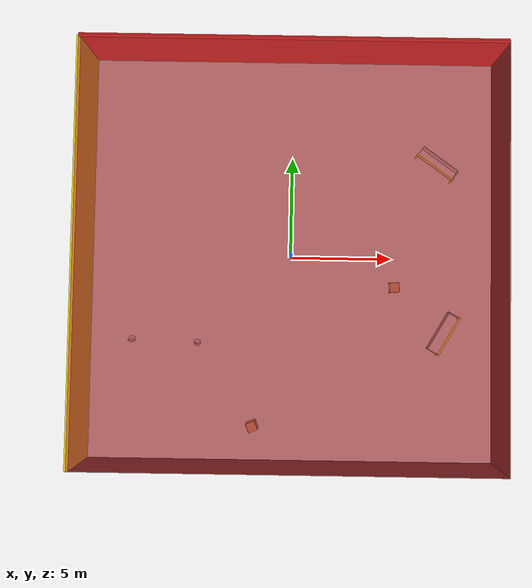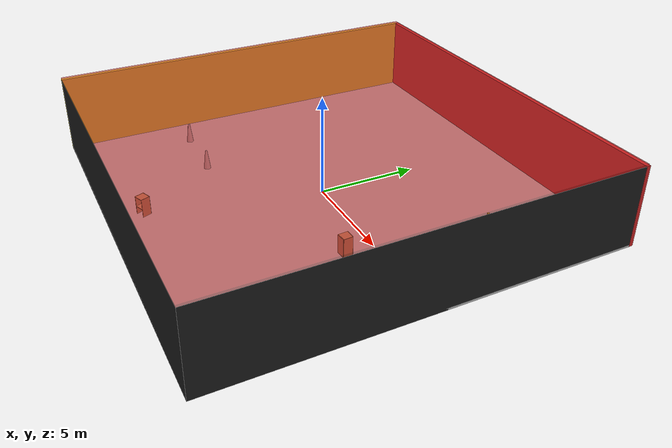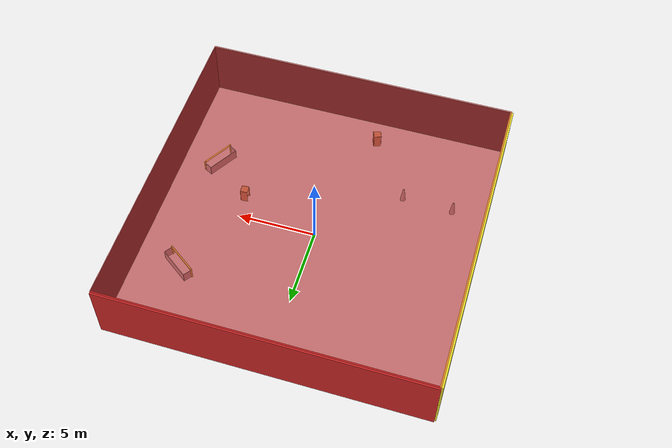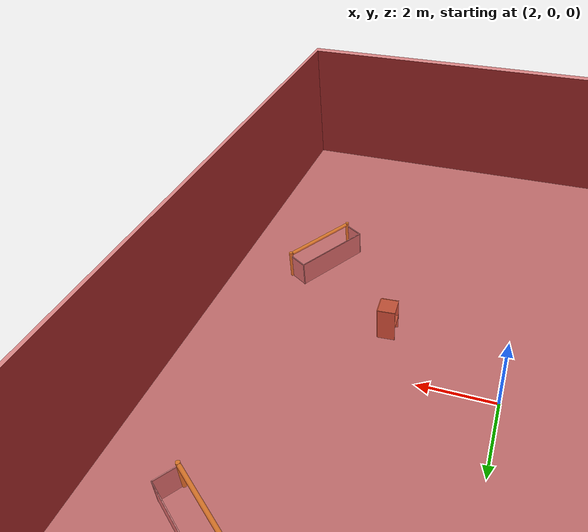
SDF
<sdf version="1.4">
 <world name="default">
  <physics type="ode">
   <max_step_size>0.001</max_step_size>
   <real_time_factor>1</real_time_factor>
   <real_time_update_rate>1000</real_time_update_rate>
   <gravity>0 0 -9.8</gravity>
  </physics>
  <scene><ambient>0.4 0.4 0.4 1</ambient><background>0.7 0.7 0.7 1</background><shadows>1</shadows></scene>
  <model name="Surrounding">
   <static>1</static>
   <link name="Ceiling">
    <collision name="Ceiling_Collision"><geometry><box><size>20 20 0.1</size></box></geometry></collision>
    <visual name="Ceiling_Visual">
     <geometry><box><size>20 20 0.1</size></box></geometry>
     <material>
      <script><uri>file://media/materials/scripts/gazebo.material</uri><name>Gazebo/RedTransparent</name></script>
     </material>
    </visual>
    <pose>0 0 4.05 0 0 0</pose>
   </link>
   <link name="Wall_South">
    <collision name="Wall_South_Collision">
     <geometry><box><size>20 0 4</size></box></geometry>
     <pose>0 0 2 0 -0 0</pose>
    </collision>
    <visual name="Wall_South_Visual">
     <pose>0 0 2 0 -0 0</pose>
     <geometry><box><size>20 0 4</size></box></geometry>
     <material>
      <script><uri>file://media/materials/scripts/gazebo.material</uri><name>Gazebo/Black</name></script>
     </material>
    </visual>
    <velocity_decay><linear>0</linear><angular>0</angular></velocity_decay>
    <pose>0 -10 0 0 -0 0</pose>
   </link>
   <link name="Wall_East">
    <collision name="Wall_21_Collision">
     <geometry><box><size>20 0 4</size></box></geometry>
     <pose>0 0 2 0 -0 0</pose>
    </collision>
    <visual name="Wall_21_Visual">
     <pose>0 0 2 0 -0 0</pose>
     <geometry><box><size>20 0 4</size></box></geometry>
     <material>
      <script><uri>file://media/materials/scripts/gazebo.material</uri><name>Gazebo/FlatBlack</name></script>
     </material>
    </visual>
    <velocity_decay><linear>0</linear><angular>0</angular></velocity_decay>
    <pose>10 0 0 0 -0 1.5708</pose>
   </link>
   <link name="Wall_North">
    <collision name="Wall_22_Collision">
     <geometry><box><size>20 0.2 4</size></box></geometry>
     <pose>0 0 2 0 -0 0</pose>
    </collision>
    <visual name="Wall_22_Visual">
     <pose>0 0 2 0 -0 0</pose>
     <geometry><box><size>20 0.2 4</size></box></geometry>
     <material>
      <script><uri>file://media/materials/scripts/gazebo.material</uri><name>Gazebo/Red</name></script>
     </material>
    </visual>
    <velocity_decay><linear>0</linear><angular>0</angular></velocity_decay>
    <pose>0 10 0 0 -0 0</pose>
   </link>
   <link name="Wall_West">
    <collision name="Wall_23_Collision">
     <geometry><box><size>20 0.2 4</size></box></geometry>
     <pose>0 0 2 0 -0 0</pose>
    </collision>
    <visual name="Wall_23_Visual">
     <pose>0 0 2 0 -0 0</pose>
     <geometry><box><size>20 0.2 4</size></box></geometry>
     <material>
      <script><uri>file://media/materials/scripts/gazebo.material</uri><name>Gazebo/Yellow</name></script>
     </material>
    </visual>
    <velocity_decay><linear>0</linear><angular>0</angular></velocity_decay>
    <pose>-10 0 0 0 0 -1.5708</pose>
   </link>
   <link name="Ground_link">
    <collision name="collision">
     <pose>0 0 .05 0 -0 0</pose>
     <geometry><box><size>20 20 0.1</size></box></geometry>
    </collision>
    <visual name="visual">
     <pose>0 0 .05 0 -0 0</pose>
     <geometry><box><size>20 20 0.1</size></box></geometry>
     <material>
      <script><uri>file://media/materials/scripts/gazebo.material</uri><name>Gazebo/Pioneer2Body</name></script>
     </material>
    </visual>
   </link>
   <static>1</static>
  </model>
  <spherical_coordinates>
   <surface_model>EARTH_WGS84</surface_model>
   <latitude_deg>0</latitude_deg>
   <longitude_deg>0</longitude_deg>
   <elevation>0</elevation>
   <heading_deg>0</heading_deg>
  </spherical_coordinates>
  <light name="lightball_0" type="diffuse">
   <diffuse>0.8 0.8 0.8 1</diffuse>
   <specular>0.2 0.2 0.2 1</specular>
   <attenuation>
    <range>100</range>
    <constant>0.7</constant>
    <linear>0.01</linear>
    <quadratic>0.001</quadratic>
   </attenuation>
   <direction>-0.5 0.1 -0.9</direction>
   <pose>-0.956411055765 -8.58904278023 1.66114196512 0 0 0</pose>
  </light>
  <light name="lightball_1" type="diffuse">
   <diffuse>0.8 0.8 0.8 1</diffuse>
   <specular>0.2 0.2 0.2 1</specular>
   <attenuation>
    <range>100</range>
    <constant>0.7</constant>
    <linear>0.01</linear>
    <quadratic>0.001</quadratic>
   </attenuation>
   <direction>-0.5 0.1 -0.9</direction>
   <pose>4.79991096124 6.06655685573 2.83385839533 0 0 0</pose>
  </light>
  <light name="lightball_2" type="diffuse">
   <diffuse>0.8 0.8 0.8 1</diffuse>
   <specular>0.2 0.2 0.2 1</specular>
   <attenuation>
    <range>100</range>
    <constant>0.7</constant>
    <linear>0.01</linear>
    <quadratic>0.001</quadratic>
   </attenuation>
   <direction>-0.5 0.1 -0.9</direction>
   <pose>-8.60591560525 9.07290817961 3.72696783671 0 0 0</pose>
  </light>
  <light name="lightball_3" type="diffuse">
   <diffuse>0.8 0.8 0.8 1</diffuse>
   <specular>0.2 0.2 0.2 1</specular>
   <attenuation>
    <range>100</range>
    <constant>0.7</constant>
    <linear>0.01</linear>
    <quadratic>0.001</quadratic>
   </attenuation>
   <direction>-0.5 0.1 -0.9</direction>
   <pose>4.97391011787 8.56607543225 2.74501027438 0 0 0</pose>
  </light>
  <light name="lightball_4" type="diffuse">
   <diffuse>0.8 0.8 0.8 1</diffuse>
   <specular>0.2 0.2 0.2 1</specular>
   <attenuation>
    <range>100</range>
    <constant>0.7</constant>
    <linear>0.01</linear>
    <quadratic>0.001</quadratic>
   </attenuation>
   <direction>-0.5 0.1 -0.9</direction>
   <pose>4.36249288396 5.40283032526 2.38023356295 0 0 0</pose>
  </light>
  <include>
   <uri>model://construction_cone</uri>
   <pose>-7.8436144488 -4.14811323371 0 0 0 0.625591088537</pose>
  </include>
  <include>
   <uri>model://construction_cone</uri>
   <pose>-4.60365466699 -4.27493904047 0 0 0 1.08432056073</pose>
  </include>
  <include><uri>model://cabinet</uri><pose>-1.79831087737 -8.2941544669 0 0 0 1.94499682255</pose></include>
  <include><uri>model://cabinet</uri><pose>5.07191059701 -1.42027846592 0 0 0 0.0541949873335</pose></include>
  <include>
   <uri>model://robocup_3Dsim_goal</uri>
   <pose>7.78083794093 -3.77310954548 0 0 0 2.60942570196</pose>
  </include>
  <include>
   <uri>model://robocup_3Dsim_goal</uri>
   <pose>7.05248927372 4.5384329076 0 0 0 0.948585219397</pose>
  </include>
 </world>
</sdf>

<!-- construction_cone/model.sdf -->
<sdf version="1.5">
  <model name="Construction Cone">
    <link name="link">
      <collision name="collision">
        <geometry>
          <mesh>
            <scale>10 10 10</scale>
            <uri>file://isr-testbed/construction_cone/meshes/construction_cone.dae</uri>
          </mesh>
        </geometry>
      </collision>
      <visual name="visual">
        <geometry>
          <mesh>
            <scale>10 10 10</scale>
            <uri>file://isr-testbed/construction_cone/meshes/construction_cone.dae</uri>
          </mesh>
        </geometry>
      </visual>
    </link>
  </model>
</sdf>

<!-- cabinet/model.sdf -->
<sdf version="1.5">
  <model name="cabinet">
    <static>true</static>
    <link name="cabinet_bottom_plate">
      <inertial>
        <pose>0 0 -1 0 0 0</pose>
        <inertia>
          <ixx>2.050000</ixx>
          <ixy>0</ixy>
          <ixz>0</ixz>
          <iyy>2.050000</iyy>
          <iyz>0</iyz>
          <izz>2.050000</izz>
        </inertia>
        <mass>25.000000</mass>
      </inertial>
      <collision name="cabinet_bottom_plate_geom">
        <pose>0 0 0.010000 0 0 0</pose>
        <geometry>
          <box>
            <size>0.450000 0.450000 0.020000</size>
          </box>
        </geometry>
      </collision>
      <visual name="cabinet_bottom_plate_geom_visual">
        <pose>0 0 0.010000 0 0 0</pose>
        <geometry>
          <box>
            <size>0.450000 0.450000 0.020000</size>
          </box>
        </geometry>
        <material>
          <script>
            <uri>model://media/materials/scripts/gazebo.material</uri>
            <name>Gazebo/Wood</name>
          </script>
        </material>
      </visual>
      <collision name="cabinet_bottom_plate_geom_cabinet_back_plate">
        <pose>0.235000 0 0.510000 0 0 0</pose>
        <geometry>
          <box>
            <size>0.020000 0.450000 1.020000</size>
          </box>
        </geometry>
      </collision>
      <visual name="cabinet_bottom_plate_geom_cabinet_back_plate_visual">
        <pose>0.235000 0 0.510000 0 0 0</pose>
        <geometry>
          <box>
            <size>0.020000 0.450000 1.020000</size>
          </box>
        </geometry>
        <material>
          <script>
            <uri>model://media/materials/scripts/gazebo.material</uri>
            <name>Gazebo/Wood</name>
          </script>
        </material>
      </visual>
      <collision name="cabinet_bottom_plate_geom_cabinet_left_plate">
        <pose>0 0.235000 0.510000 0 0 0</pose>
        <geometry>
          <box>
            <size>0.450000 0.020000 1.020000</size>
          </box>
        </geometry>
      </collision>
      <visual name="cabinet_bottom_plate_geom_cabinet_left_plate_visual">
        <pose>0 0.235000 0.510000 0 0 0</pose>
        <geometry>
          <box>
            <size>0.450000 0.020000 1.020000</size>
          </box>
        </geometry>
        <material>
          <script>
            <uri>model://media/materials/scripts/gazebo.material</uri>
            <name>Gazebo/Wood</name>
          </script>
        </material>
      </visual>
      <collision name="cabinet_bottom_plate_geom_cabinet_middle_plate">
        <pose>0 0 0.510000 0 0 0</pose>
        <geometry>
          <box>
            <size>0.450000 0.450000 0.020000</size>
          </box>
        </geometry>
      </collision>
      <visual name="cabinet_bottom_plate_geom_cabinet_middle_plate_visual">
        <pose>0 0 0.510000 0 0 0</pose>
        <geometry>
          <box>
            <size>0.450000 0.450000 0.020000</size>
          </box>
        </geometry>
        <material>
          <script>
            <uri>model://media/materials/scripts/gazebo.material</uri>
            <name>Gazebo/Wood</name>
          </script>
        </material>
      </visual>
      <collision name="cabinet_bottom_plate_geom_cabinet_right_plate">
        <pose>0 -0.235000 0.510000 0 0 0</pose>
        <geometry>
          <box>
            <size>0.450000 0.020000 1.020000</size>
          </box>
        </geometry>
      </collision>
      <visual name="cabinet_bottom_plate_geom_cabinet_right_plate_visual">
        <pose>0 -0.235000 0.510000 0 0 0</pose>
        <geometry>
          <box>
            <size>0.450000 0.020000 1.020000</size>
          </box>
        </geometry>
        <material>
          <script>
            <uri>model://media/materials/scripts/gazebo.material</uri>
            <name>Gazebo/Wood</name>
          </script>
        </material>
      </visual>
      <collision name="cabinet_bottom_plate_geom_cabinet_top_plate">
        <pose>0 0 1.010000 0 0 0</pose>
        <geometry>
          <box>
            <size>0.450000 0.450000 0.020000</size>
          </box>
        </geometry>
      </collision>
      <visual name="cabinet_bottom_plate_geom_cabinet_top_plate_visual">
        <pose>0 0 1.010000 0 0 0</pose>
        <geometry>
          <box>
            <size>0.450000 0.450000 0.020000</size>
          </box>
        </geometry>
        <material>
          <script>
            <uri>model://media/materials/scripts/gazebo.material</uri>
            <name>Gazebo/Wood</name>
          </script>
        </material>
      </visual>
    </link>
  </model>
</sdf>

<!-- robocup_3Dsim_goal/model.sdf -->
<sdf version="1.5">
  <model name="robocup_3d_goal">
    <static>true</static>
    <link name="left_post">
      <pose>0 1.05 0.45 0 0 0</pose>
      <collision name="collision">
        <geometry>
          <cylinder>
            <radius>0.05</radius>
            <length>0.9</length>
          </cylinder>
        </geometry>
      </collision>
      <visual name="visual">
        <geometry>
          <cylinder>
            <radius>0.05</radius>
            <length>0.9</length>
          </cylinder>
        </geometry>
        <material>
          <script>
            <uri>file://media/materials/scripts/gazebo.material</uri>
            <name>Gazebo/ZincYellow</name>
          </script>
        </material>
      </visual>
    </link>
    <link name="left_support_horiz_lower">
      <pose>0.30 1.05 0.01 0 0 0</pose>
      <collision name="collision">
        <geometry>
          <box>
            <size>0.50 0.02 0.02</size>
          </box>
        </geometry>
      </collision>
      <visual name="visual">
        <geometry>
          <box>
            <size>0.50 0.02 0.02</size>
          </box>
        </geometry>
        <material>
          <script>
            <uri>file://media/materials/scripts/gazebo.material</uri>
            <name>Gazebo/White</name>
          </script>
        </material>
      </visual>
    </link>
    <link name="left_support_horiz_upper">
      <pose>0.30 1.05 0.79 0 0 0</pose>
      <collision name="collision">
        <geometry>
          <box>
            <size>0.50 0.02 0.02</size>
          </box>
        </geometry>
      </collision>
      <visual name="visual">
        <geometry>
          <box>
            <size>0.50 0.02 0.02</size>
          </box>
        </geometry>
        <material>
          <script>
            <uri>file://media/materials/scripts/gazebo.material</uri>
            <name>Gazebo/White</name>
          </script>
        </material>
      </visual>
    </link>
    <link name="left_support_vertical">
      <pose>0.56 1.05 0.4 0 1.5708 0</pose>
      <collision name="collision">
        <geometry>
          <box>
            <size>0.80 0.02 0.02</size>
          </box>
        </geometry>
      </collision>
      <visual name="visual">
        <geometry>
          <box>
            <size>0.80 0.02 0.02</size>
          </box>
        </geometry>
        <material>
          <script>
            <uri>file://media/materials/scripts/gazebo.material</uri>
            <name>Gazebo/White</name>
          </script>
        </material>
      </visual>
    </link>
    <link name="right_support_horiz_lower">
      <pose>0.30 -1.05 0.01 0 0 0</pose>
      <collision name="collision">
        <geometry>
          <box>
            <size>0.50 0.02 0.02</size>
          </box>
        </geometry>
      </collision>
      <visual name="visual">
        <geometry>
          <box>
            <size>0.50 0.02 0.02</size>
          </box>
        </geometry>
        <material>
          <script>
            <uri>file://media/materials/scripts/gazebo.material</uri>
            <name>Gazebo/White</name>
          </script>
        </material>
      </visual>
    </link>
    <link name="right_support_horiz_upper">
      <pose>0.30 -1.05 0.79 0 0 0</pose>
      <collision name="collision">
        <geometry>
          <box>
            <size>0.50 0.02 0.02</size>
          </box>
        </geometry>
      </collision>
      <visual name="visual">
        <geometry>
          <box>
            <size>0.50 0.02 0.02</size>
          </box>
        </geometry>
        <material>
          <script>
            <uri>file://media/materials/scripts/gazebo.material</uri>
            <name>Gazebo/White</name>
          </script>
        </material>
      </visual>
    </link>
    <link name="right_support_vertical">
      <pose>0.56 -1.05 0.4 0 1.5708 0</pose>
      <collision name="collision">
        <geometry>
          <box>
            <size>0.80 0.02 0.02</size>
          </box>
        </geometry>
      </collision>
      <visual name="visual">
        <geometry>
          <box>
            <size>0.80 0.02 0.02</size>
          </box>
        </geometry>
        <material>
          <script>
            <uri>file://media/materials/scripts/gazebo.material</uri>
            <name>Gazebo/White</name>
          </script>
        </material>
      </visual>
    </link>
    <link name="center_support_horiz_lower">
      <pose>0.56 0 0.01 0 1.5708 0</pose>
      <collision name="collision">
        <geometry>
          <box>
            <size>0.02 2.08 0.02</size>
          </box>
        </geometry>
      </collision>
      <visual name="visual">
        <geometry>
          <box>
            <size>0.02 2.08 0.02</size>
          </box>
        </geometry>
        <material>
          <script>
            <uri>file://media/materials/scripts/gazebo.material</uri>
            <name>Gazebo/White</name>
          </script>
        </material>
      </visual>
    </link>
    <link name="center_support_horiz_upper">
      <pose>0.56 0 0.79 0 1.5708 0</pose>
      <collision name="collision">
        <geometry>
          <box>
            <size>0.02 2.08 0.02</size>
          </box>
        </geometry>
      </collision>
      <visual name="visual">
        <geometry>
          <box>
            <size>0.02 2.08 0.02</size>
          </box>
        </geometry>
        <material>
          <script>
            <uri>file://media/materials/scripts/gazebo.material</uri>
            <name>Gazebo/White</name>
          </script>
        </material>
      </visual>
    </link>
    <link name="right_post">
      <pose>0 -1.05 0.45 0 0 0</pose>
      <collision name="collision">
        <geometry>
          <cylinder>
            <radius>0.05</radius>
            <length>0.9</length>
          </cylinder>
        </geometry>
      </collision>
      <visual name="visual">
        <geometry>
          <cylinder>
            <radius>0.05</radius>
            <length>0.9</length>
          </cylinder>
        </geometry>
        <material>
          <script>
            <uri>file://media/materials/scripts/gazebo.material</uri>
            <name>Gazebo/ZincYellow</name>
          </script>
        </material>
      </visual>
    </link>
    <link name="crossbar">
      <pose>0 0 0.85 1.57 1.57 0</pose>
      <collision name="collision">
        <geometry>
          <cylinder>
            <radius>0.05</radius>
            <length>2.0</length>
          </cylinder>
        </geometry>
      </collision>
      <visual name="visual">
        <geometry>
          <cylinder>
            <radius>0.05</radius>
            <length>2.0</length>
          </cylinder>
        </geometry>
        <material>
          <script>
            <uri>file://media/materials/scripts/gazebo.material</uri>
            <name>Gazebo/ZincYellow</name>
          </script>
        </material>
      </visual>
    </link>
    <link name="center_net">
      <pose>0.56 0 0.40 0 0 0</pose>
      <collision name="collision">
        <geometry>
          <box>
            <size>0.01 2.1 0.80</size>
          </box>
        </geometry>
      </collision>
      <visual name="visual">
        <geometry>
          <box>
            <size>0.01 2.1 0.80</size>
          </box>
        </geometry>
        <material>
          <script>
            <uri>model://../model_source/models/robocup09_spl_field/materials/scripts/</uri>
            <uri>model://../model_source/models/robocup09_spl_field/materials/textures/</uri>
            <name>RoboCup/Net</name>
          </script>
        </material>
      </visual>
    </link>
    <link name="left_net">
      <pose>0.30 1.05 0.40 0 0 0</pose>
      <collision name="collision">
        <geometry>
          <box>
            <size>0.50 0.01 0.76</size>
          </box>
        </geometry>
      </collision>
      <visual name="visual">
        <geometry>
          <box>
            <size>0.50 0.01 0.76</size>
          </box>
        </geometry>
        <material>
          <script>
            <uri>model://../model_source/models/robocup09_spl_field/materials/scripts/</uri>
            <uri>model://../model_source/models/robocup09_spl_field/materials/textures/</uri>
            <name>RoboCup/Net</name>
          </script>
        </material>
      </visual>
    </link>
    <link name="right_net">
      <pose>0.30 -1.05 0.40 0 0 0</pose>
      <collision name="collision">
        <geometry>
          <box>
            <size>0.50 0.01 0.76</size>
          </box>
        </geometry>
      </collision>
      <visual name="visual">
        <geometry>
          <box>
            <size>0.50 0.01 0.76</size>
          </box>
        </geometry>
        <material>
          <script>
            <uri>model://../model_source/models/robocup09_spl_field/materials/scripts/</uri>
            <uri>model://../model_source/models/robocup09_spl_field/materials/textures/</uri>
            <name>RoboCup/Net</name>
          </script>
        </material>
      </visual>
    </link>
  </model>
</sdf>
